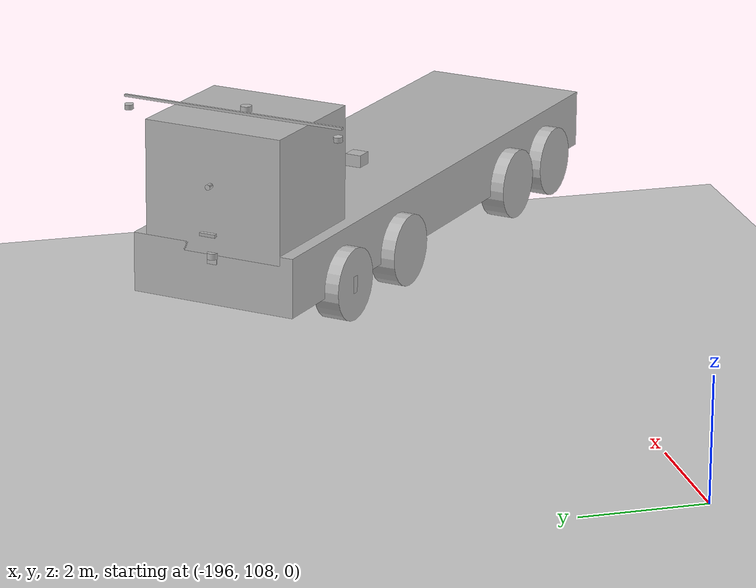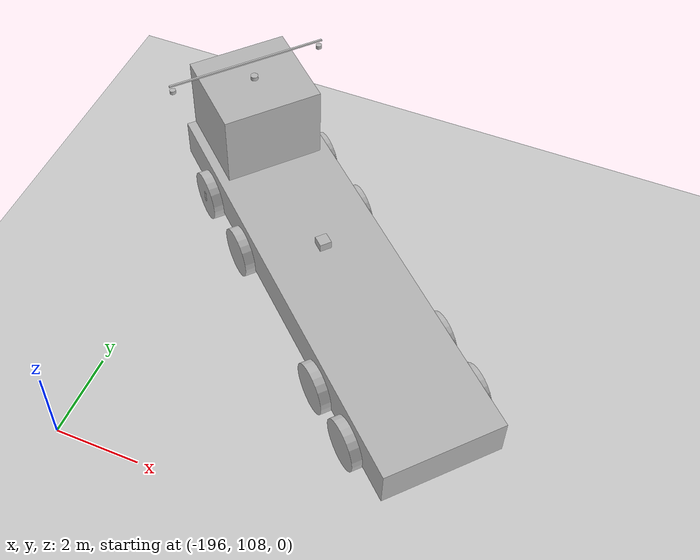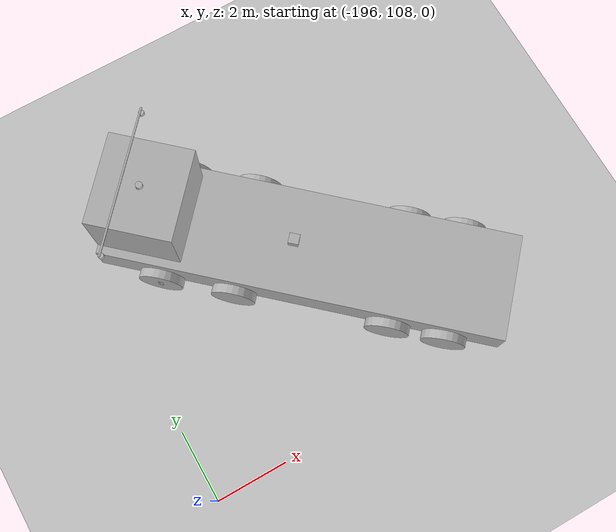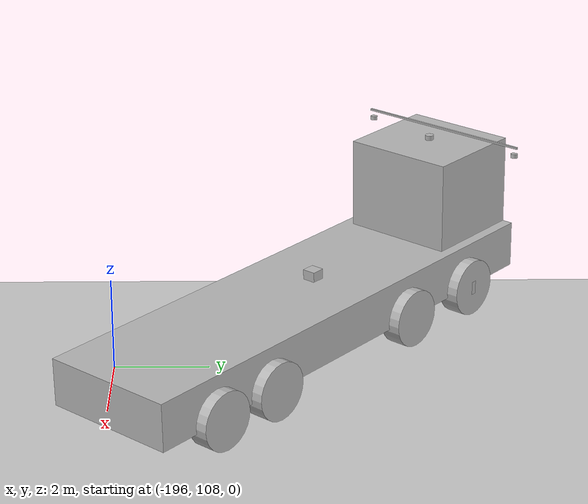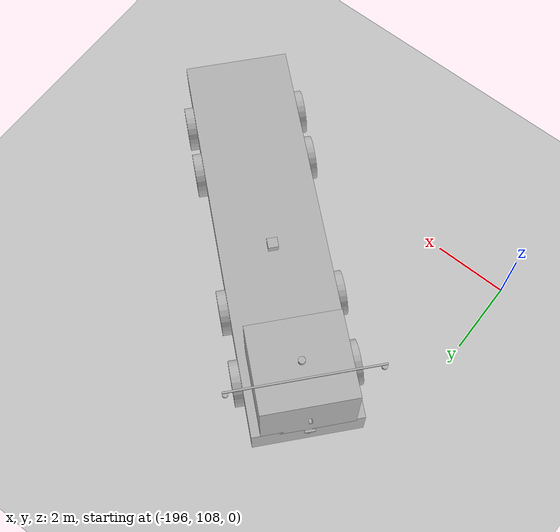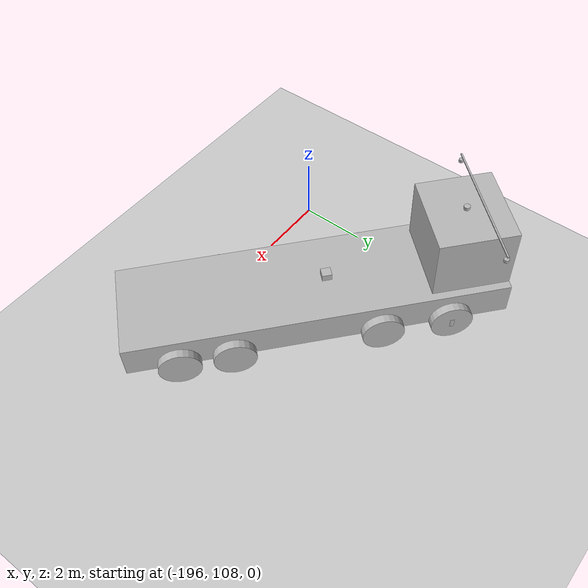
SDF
<sdf version="1.7">
 <world name="default">
  <model name="ground_plane">
   <static>1</static>
   <link name="link">
    <collision name="collision">
     <geometry><plane><normal>0 0 1</normal><size>100 100</size></plane></geometry>
     <surface><friction><ode><mu>100</mu><mu2>50</mu2></ode></friction></surface>
    </collision>
    <visual name="visual">
     <cast_shadows>0</cast_shadows>
     <geometry><plane><normal>0 0 1</normal><size>100 100</size></plane></geometry>
     <material>
      <script><uri>file://media/materials/scripts/gazebo.material</uri><name>Gazebo/Grey</name></script>
     </material>
    </visual>
   </link>
  </model>
  <light name="sun" type="directional">
   <pose>0 0 10 0 -0 0</pose>
   <diffuse>0.8 0.8 0.8 1</diffuse>
   <specular>0.2 0.2 0.2 1</specular>
   <attenuation>
    <range>1000</range>
    <constant>0.9</constant>
    <linear>0.01</linear>
    <quadratic>0.001</quadratic>
   </attenuation>
   <direction>-0.5 0.1 -0.9</direction>
   <spot><inner_angle>0</inner_angle><outer_angle>0</outer_angle><falloff>0</falloff></spot>
  </light>
  <spherical_coordinates>
   <surface_model>EARTH_WGS84</surface_model>
   <latitude_deg>38.1615</latitude_deg>
   <longitude_deg>-122.455</longitude_deg>
   <elevation>488</elevation>
   <heading_deg>180</heading_deg>
  </spherical_coordinates>
  <model name="arocs_truck">
   <link name="base_footprint">
    <inertial>
     <pose>1.00803 0.000764 1.12558 0 -0 0</pose>
     <mass>1111.6</mass>
     <inertia>
      <ixx>1487.02</ixx>
      <ixy>-3.22277</ixy>
      <ixz>-1212.42</ixz>
      <iyy>9311.91</iyy>
      <iyz>0.0249129</iyz>
      <izz>9694.34</izz>
     </inertia>
    </inertial>
    <collision name="base_footprint_fixed_joint_lump__cabin_link_collision">
     <pose>3.8205 0 2.095 0 -0 0</pose>
     <geometry><box><size>1.964 2.14 1.833</size></box></geometry>
    </collision>
    <collision name="base_footprint_fixed_joint_lump__bar_link_collision_1">
     <pose>4.2225 0 3.122 0 -0 1.5708</pose>
     <geometry><box><size>3.478 0.04 0.035</size></box></geometry>
    </collision>
    <collision name="base_footprint_fixed_joint_lump__left_lidar_link_collision_2">
     <pose>4.2225 1.674 2.9645 0.087266 -0 1.5708</pose>
     <geometry><cylinder><length>0.075</length><radius>0.065</radius></cylinder></geometry>
    </collision>
    <collision name="base_footprint_fixed_joint_lump__right_lidar_link_collision_3">
     <pose>4.2225 -1.674 2.9645 0.087266 -0 1.5708</pose>
     <geometry><cylinder><length>0.075</length><radius>0.065</radius></cylinder></geometry>
    </collision>
    <collision name="base_footprint_fixed_joint_lump__camera_link_collision_4">
     <pose>4.8925 0 2.20463 3.14159 1.57079 3.14159</pose>
     <geometry><cylinder><length>0.09</length><radius>0.04</radius></cylinder></geometry>
    </collision>
    <collision name="base_footprint_fixed_joint_lump__gps_link_collision_5">
     <pose>3.8205 0 3.062 0 -0 0</pose>
     <geometry><cylinder><length>0.09</length><radius>0.08</radius></cylinder></geometry>
    </collision>
    <collision name="base_footprint_fixed_joint_lump__kinect_link_collision_6">
     <pose>4.9275 0 1.51033 0 0.098175 0</pose>
     <geometry><box><size>0.05 0.25 0.05</size></box></geometry>
    </collision>
    <collision name="base_footprint_fixed_joint_lump__first_shaft_horizontal_shaft_link_collision_7">
     <pose>3.302 0 0.536 1.57079 1.57079 3.14159</pose>
     <geometry><cylinder><length>2.548</length><radius>0.0536</radius></cylinder></geometry>
    </collision>
    <collision name="base_footprint_fixed_joint_lump__fourth_shaft_horizontal_shaft_link_collision_8">
     <pose>-3.502 0 0.536 1.57079 1.57079 3.14159</pose>
     <geometry><cylinder><length>2.548</length><radius>0.0536</radius></cylinder></geometry>
    </collision>
    <collision name="base_footprint_fixed_joint_lump__imu_link_collision_9">
     <pose>0.4 0 1.377 0 -0 0</pose>
     <geometry><box><size>0.25 0.25 0.25</size></box></geometry>
    </collision>
    <collision name="base_footprint_fixed_joint_lump__radar_link_collision_10">
     <pose>4.8025 0 1.09625 0 -0 0</pose>
     <geometry><box><size>0.05 0.15 0.1</size></box></geometry>
    </collision>
    <collision name="base_footprint_fixed_joint_lump__second_shaft_horizontal_shaft_link_collision_11">
     <pose>1.552 0 0.536 1.57079 1.57079 3.14159</pose>
     <geometry><cylinder><length>2.548</length><radius>0.0536</radius></cylinder></geometry>
    </collision>
    <collision name="base_footprint_fixed_joint_lump__second_wheel_left_link_collision_12">
     <pose>1.552 1.299 0.536 1.5708 0 3.1408</pose>
     <geometry><cylinder><length>0.385</length><radius>0.536</radius></cylinder></geometry>
    </collision>
    <collision name="base_footprint_fixed_joint_lump__second_wheel_right_link_collision_13">
     <pose>1.552 -1.299 0.536 1.5708 0 3.1408</pose>
     <geometry><cylinder><length>0.385</length><radius>0.536</radius></cylinder></geometry>
    </collision>
    <collision name="base_footprint_fixed_joint_lump__sick_link_collision_14">
     <pose>4.8025 0 1.16933 0 -0 0</pose>
     <geometry><cylinder><length>0.09</length><radius>0.08</radius></cylinder></geometry>
    </collision>
    <collision name="base_footprint_fixed_joint_lump__third_shaft_horizontal_shaft_link_collision_15">
     <pose>-2.152 0 0.536 1.57079 1.57079 3.14159</pose>
     <geometry><cylinder><length>2.548</length><radius>0.0536</radius></cylinder></geometry>
    </collision>
    <collision name="base_footprint_fixed_joint_lump__third_wheel_left_link_collision_16">
     <pose>-2.152 1.299 0.536 1.5708 0 3.1408</pose>
     <geometry><cylinder><length>0.385</length><radius>0.536</radius></cylinder></geometry>
    </collision>
    <collision name="base_footprint_fixed_joint_lump__third_wheel_right_link_collision_17">
     <pose>-2.152 -1.299 0.536 1.5708 0 3.1408</pose>
     <geometry><cylinder><length>0.385</length><radius>0.536</radius></cylinder></geometry>
    </collision>
    <visual name="base_footprint_fixed_joint_lump__base_link_visual">
     <pose>0 0 0.877 0 -0 0</pose>
     <geometry><box><size>9.605 2.548 0.877</size></box></geometry>
    </visual>
    <visual name="base_footprint_fixed_joint_lump__cabin_link_visual_1">
     <pose>3.8205 0 2.095 0 -0 0</pose>
     <geometry><box><size>1.964 2.14 1.833</size></box></geometry>
    </visual>
    <visual name="base_footprint_fixed_joint_lump__bar_link_visual_2">
     <pose>4.2225 0 3.122 0 -0 1.5708</pose>
     <geometry><box><size>3.478 0.04 0.035</size></box></geometry>
    </visual>
    <visual name="base_footprint_fixed_joint_lump__left_lidar_link_visual_3">
     <pose>4.2225 1.674 2.9645 0.087266 -0 1.5708</pose>
     <geometry><cylinder><length>0.075</length><radius>0.065</radius></cylinder></geometry>
    </visual>
    <visual name="base_footprint_fixed_joint_lump__right_lidar_link_visual_4">
     <pose>4.2225 -1.674 2.9645 0.087266 -0 1.5708</pose>
     <geometry><cylinder><length>0.075</length><radius>0.065</radius></cylinder></geometry>
    </visual>
    <visual name="base_footprint_fixed_joint_lump__camera_link_visual_5">
     <pose>4.8925 0 2.20463 3.14159 1.57079 3.14159</pose>
     <geometry><cylinder><length>0.09</length><radius>0.04</radius></cylinder></geometry>
    </visual>
    <visual name="base_footprint_fixed_joint_lump__gps_link_visual_6">
     <pose>3.8205 0 3.062 0 -0 0</pose>
     <geometry><cylinder><length>0.09</length><radius>0.08</radius></cylinder></geometry>
    </visual>
    <visual name="base_footprint_fixed_joint_lump__kinect_link_visual_7">
     <pose>4.9275 0 1.51033 0 0.098175 0</pose>
     <geometry><box><size>0.05 0.25 0.05</size></box></geometry>
    </visual>
    <visual name="base_footprint_fixed_joint_lump__first_shaft_horizontal_shaft_link_visual_8">
     <pose>3.302 0 0.536 1.57079 1.57079 3.14159</pose>
     <geometry><cylinder><length>2.573</length><radius>0.0536</radius></cylinder></geometry>
    </visual>
    <visual name="base_footprint_fixed_joint_lump__fourth_shaft_horizontal_shaft_link_visual_9">
     <pose>-3.502 0 0.536 1.57079 1.57079 3.14159</pose>
     <geometry><cylinder><length>2.573</length><radius>0.0536</radius></cylinder></geometry>
    </visual>
    <visual name="base_footprint_fixed_joint_lump__imu_link_visual_10">
     <pose>0.4 0 1.377 0 -0 0</pose>
     <geometry><box><size>0.25 0.25 0.25</size></box></geometry>
    </visual>
    <visual name="base_footprint_fixed_joint_lump__radar_link_visual_11">
     <pose>4.8025 0 1.09625 0 -0 0</pose>
     <geometry><box><size>0.05 0.15 0.1</size></box></geometry>
    </visual>
    <visual name="base_footprint_fixed_joint_lump__second_shaft_horizontal_shaft_link_visual_12">
     <pose>1.552 0 0.536 1.57079 1.57079 3.14159</pose>
     <geometry><cylinder><length>2.573</length><radius>0.0536</radius></cylinder></geometry>
    </visual>
    <visual name="base_footprint_fixed_joint_lump__second_wheel_left_link_visual_13">
     <pose>1.552 1.299 0.536 1.5708 0 3.1408</pose>
     <geometry><cylinder><length>0.385</length><radius>0.536</radius></cylinder></geometry>
    </visual>
    <visual name="base_footprint_fixed_joint_lump__second_wheel_right_link_visual_14">
     <pose>1.552 -1.299 0.536 1.5708 0 3.1408</pose>
     <geometry><cylinder><length>0.385</length><radius>0.536</radius></cylinder></geometry>
    </visual>
    <visual name="base_footprint_fixed_joint_lump__sick_link_visual_15">
     <pose>4.8025 0 1.16933 0 -0 0</pose>
     <geometry><cylinder><length>0.09</length><radius>0.08</radius></cylinder></geometry>
    </visual>
    <visual name="base_footprint_fixed_joint_lump__third_shaft_horizontal_shaft_link_visual_16">
     <pose>-2.152 0 0.536 1.57079 1.57079 3.14159</pose>
     <geometry><cylinder><length>2.573</length><radius>0.0536</radius></cylinder></geometry>
    </visual>
    <visual name="base_footprint_fixed_joint_lump__third_wheel_left_link_visual_17">
     <pose>-2.152 1.299 0.536 1.5708 0 3.1408</pose>
     <geometry><cylinder><length>0.385</length><radius>0.536</radius></cylinder></geometry>
    </visual>
    <visual name="base_footprint_fixed_joint_lump__third_wheel_right_link_visual_18">
     <pose>-2.152 -1.299 0.536 1.5708 0 3.1408</pose>
     <geometry><cylinder><length>0.385</length><radius>0.536</radius></cylinder></geometry>
    </visual>
    <sensor name="left_lidar" type="ray">
     <always_on>1</always_on>
     <visualize>1</visualize>
     <update_rate>5</update_rate>
     <ray>
      <scan>
       <horizontal>
        <samples>360</samples>
        <resolution>1</resolution>
        <min_angle>0</min_angle>
        <max_angle>6.28</max_angle>
       </horizontal>
       <vertical><samples>1</samples><min_angle>0</min_angle><max_angle>0</max_angle></vertical>
      </scan>
      <range><min>0.12</min><max>100</max><resolution>0.015</resolution></range>
      <noise><type>gaussian</type><mean>0</mean><stddev>0.01</stddev></noise>
     </ray>
     <plugin name="left_lidar_scan" filename="libgazebo_ros_ray_sensor.so">
      <ros><remapping>~/out:=left_scan</remapping></ros>
      <output_type>sensor_msgs/LaserScan</output_type>
      <frame_name>left_lidar_link</frame_name>
     </plugin>
     <pose>4.2225 1.674 2.9645 0.087266 -0 1.5708</pose>
    </sensor>
    <sensor name="right_lidar" type="ray">
     <always_on>1</always_on>
     <visualize>1</visualize>
     <update_rate>5</update_rate>
     <ray>
      <scan>
       <horizontal>
        <samples>360</samples>
        <resolution>1</resolution>
        <min_angle>0</min_angle>
        <max_angle>6.28</max_angle>
       </horizontal>
       <vertical><samples>1</samples><min_angle>0</min_angle><max_angle>0</max_angle></vertical>
      </scan>
      <range><min>0.12</min><max>100</max><resolution>0.015</resolution></range>
      <noise><type>gaussian</type><mean>0</mean><stddev>0.01</stddev></noise>
     </ray>
     <plugin name="right_lidar_scan" filename="libgazebo_ros_ray_sensor.so">
      <ros><remapping>~/out:=right_scan</remapping></ros>
      <output_type>sensor_msgs/LaserScan</output_type>
      <frame_name>right_lidar_link</frame_name>
     </plugin>
     <pose>4.2225 -1.674 2.9645 0.087266 -0 1.5708</pose>
    </sensor>
    <sensor name="camera" type="camera">
     <visualize>1</visualize>
     <update_rate>30</update_rate>
     <camera name="head">
      <horizontal_fov>1.0472</horizontal_fov>
      <image><width>800</width><height>800</height><format>R8G8B8</format></image>
      <clip><near>0.05</near><far>300</far></clip>
      <noise><type>gaussian</type><mean>0</mean><stddev>0.007</stddev></noise>
     </camera>
     <plugin name="camera_controller" filename="libgazebo_ros_camera.so">
      <alwaysOn>1</alwaysOn>
      <updateRate>0.0</updateRate>
      <cameraName>/flir/camera</cameraName>
      <imageTopicName>image_raw</imageTopicName>
      <cameraInfoTopicName>camera_info</cameraInfoTopicName>
      <frame_name>camera</frame_name>
      <hackBaseline>0.07</hackBaseline>
      <distortionK1>0.0</distortionK1>
      <distortionK2>0.0</distortionK2>
      <distortionK3>0.0</distortionK3>
      <distortionT1>0.0</distortionT1>
      <distortionT2>0.0</distortionT2>
     </plugin>
     <pose>4.8925 0 2.20463 0 -0 0</pose>
    </sensor>
    <sensor name="arocs_gps" type="gps">
     <always_on>1</always_on>
     <update_rate>1</update_rate>
     <plugin name="gps_plugin" filename="libgazebo_ros_gps_sensor.so">
      <ros><namespace>/gps</namespace><remapping>~/out:=fix</remapping></ros>
     </plugin>
     <pose>3.8205 0 3.062 0 -0 0</pose>
    </sensor>
    <sensor name="kinect_sensor" type="depth">
     <visualize>1</visualize>
     <update_rate>30</update_rate>
     <camera name="kinect_camera">
      <horizontal_fov>1.0472</horizontal_fov>
      <image><width>640</width><height>480</height><format>R8G8B8</format></image>
      <clip><near>0.01</near><far>20</far></clip>
     </camera>
     <plugin name="kinect_plugin" filename="libgazebo_ros_camera.so">
      <baseline>0.2</baseline>
      <alwaysOn>1</alwaysOn>
      <updateRate>30.0</updateRate>
      <frame_name>kinect_depth_frame</frame_name>
      <imageTopicName>image_raw</imageTopicName>
      <cameraInfoTopicName>camera_info</cameraInfoTopicName>
      <frameName>kinect_depth_frame</frameName>
      <pointCloudCutoff>0.5</pointCloudCutoff>
      <pointCloudCutoffMax>3.0</pointCloudCutoffMax>
      <distortionK1>0</distortionK1>
      <distortionK2>0</distortionK2>
      <distortionK3>0</distortionK3>
      <distortionT1>0</distortionT1>
      <distortionT2>0</distortionT2>
      <CxPrime>0</CxPrime>
      <Cx>0</Cx>
      <Cy>0</Cy>
      <focalLength>0</focalLength>
      <hackBaseline>0</hackBaseline>
     </plugin>
     <pose>4.9275 0 1.51033 0 0.098175 0</pose>
    </sensor>
    <sensor name="imu_sensor" type="imu">
     <plugin name="imu_plugin" filename="libgazebo_ros_imu_sensor.so">
      <ros><remapping>~/out:=imu</remapping></ros>
      <initial_orientation_as_reference>0</initial_orientation_as_reference>
     </plugin>
     <always_on>1</always_on>
     <update_rate>200</update_rate>
     <visualize>1</visualize>
     <imu>
      <angular_velocity>
       <x>
        <noise type="gaussian">
         <mean>0</mean>
         <stddev>0.0002</stddev>
         <bias_mean>7.5e-06</bias_mean>
         <bias_stddev>8e-07</bias_stddev>
        </noise>
       </x>
       <y>
        <noise type="gaussian">
         <mean>0</mean>
         <stddev>0.0002</stddev>
         <bias_mean>7.5e-06</bias_mean>
         <bias_stddev>8e-07</bias_stddev>
        </noise>
       </y>
       <z>
        <noise type="gaussian">
         <mean>0</mean>
         <stddev>0.0002</stddev>
         <bias_mean>7.5e-06</bias_mean>
         <bias_stddev>8e-07</bias_stddev>
        </noise>
       </z>
      </angular_velocity>
      <linear_acceleration>
       <x>
        <noise type="gaussian">
         <mean>0</mean>
         <stddev>0.017</stddev>
         <bias_mean>0.1</bias_mean>
         <bias_stddev>0.001</bias_stddev>
        </noise>
       </x>
       <y>
        <noise type="gaussian">
         <mean>0</mean>
         <stddev>0.017</stddev>
         <bias_mean>0.1</bias_mean>
         <bias_stddev>0.001</bias_stddev>
        </noise>
       </y>
       <z>
        <noise type="gaussian">
         <mean>0</mean>
         <stddev>0.017</stddev>
         <bias_mean>0.1</bias_mean>
         <bias_stddev>0.001</bias_stddev>
        </noise>
       </z>
      </linear_acceleration>
     </imu>
     <pose>0.4 0 1.377 0 -0 0</pose>
    </sensor>
    <sensor name="sick_lidar" type="ray">
     <always_on>1</always_on>
     <visualize>1</visualize>
     <update_rate>5</update_rate>
     <ray>
      <scan>
       <horizontal>
        <samples>360</samples>
        <resolution>1</resolution>
        <min_angle>-1.5708</min_angle>
        <max_angle>1.5708</max_angle>
       </horizontal>
       <vertical><samples>1</samples><min_angle>0</min_angle><max_angle>0</max_angle></vertical>
      </scan>
      <range><min>0.12</min><max>50</max><resolution>0.01</resolution></range>
      <noise><type>gaussian</type><mean>0</mean><stddev>0.01</stddev></noise>
     </ray>
     <plugin name="scan_link_lidar" filename="libgazebo_ros_ray_sensor.so">
      <ros><remapping>~/out:=/sick_scan_2D</remapping></ros>
      <output_type>sensor_msgs/LaserScan</output_type>
      <frame_name>sick_link</frame_name>
     </plugin>
     <pose>4.8025 0 1.16933 0 -0 0</pose>
    </sensor>
   </link>
   <joint name="front_left_steer_joint" type="revolute">
    <pose relative_to="base_footprint">3.302 1.299 0.535 0 -0 1.5708</pose>
    <parent>base_footprint</parent>
    <child>front_left_steering_link</child>
    <axis>
     <xyz>0 0 1</xyz>
     <limit><lower>-0.524</lower><upper>0.524</upper><effort>1e+07</effort><velocity>1e+06</velocity></limit>
     <dynamics><spring_reference>0</spring_reference><spring_stiffness>0</spring_stiffness></dynamics>
    </axis>
   </joint>
   <link name="front_left_steering_link">
    <pose relative_to="front_left_steer_joint">0 0 0 0 -0 0</pose>
    <inertial>
     <mass>2</mass>
     <inertia><ixx>0.0304167</ixx><ixy>0</ixy><ixz>0</ixz><iyy>0.0304167</iyy><iyz>0</iyz><izz>0.04</izz></inertia>
    </inertial>
    <collision name="front_left_steering_link_collision">
     <geometry><cylinder><length>0.25</length><radius>0.2</radius></cylinder></geometry>
    </collision>
    <visual name="front_left_steering_link_visual">
     <geometry><cylinder><length>0.25</length><radius>0.2</radius></cylinder></geometry>
    </visual>
   </link>
   <joint name="first_wheel_left_joint" type="revolute">
    <pose relative_to="front_left_steering_link">0 0 0 0 -0 1.57</pose>
    <parent>front_left_steering_link</parent>
    <child>first_wheel_left_link</child>
    <axis>
     <xyz>0 -1 0</xyz>
     <limit><lower>-1e+16</lower><upper>1e+16</upper></limit>
     <dynamics><spring_reference>0</spring_reference><spring_stiffness>0</spring_stiffness></dynamics>
    </axis>
   </joint>
   <link name="first_wheel_left_link">
    <pose relative_to="first_wheel_left_joint">0 0 0 0 -0 0</pose>
    <inertial>
     <mass>74</mass>
     <inertia><ixx>10.63</ixx><ixy>0</ixy><ixz>0</ixz><iyy>10.63</iyy><iyz>0</iyz><izz>21.2599</izz></inertia>
    </inertial>
    <collision name="first_wheel_left_link_collision">
     <pose>0 0 0 1.5708 -0 0</pose>
     <geometry><cylinder><length>0.385</length><radius>0.536</radius></cylinder></geometry>
    </collision>
    <visual name="first_wheel_left_link_visual">
     <pose>0 0 0 1.5708 -0 0</pose>
     <geometry><cylinder><length>0.385</length><radius>0.536</radius></cylinder></geometry>
    </visual>
   </link>
   <joint name="front_right_steer_joint" type="revolute">
    <pose relative_to="base_footprint">3.302 -1.299 0.535 0 -0 1.5708</pose>
    <parent>base_footprint</parent>
    <child>front_right_steering_link</child>
    <axis>
     <xyz>0 0 1</xyz>
     <limit><lower>-0.524</lower><upper>0.524</upper><effort>1e+07</effort><velocity>1e+06</velocity></limit>
     <dynamics><spring_reference>0</spring_reference><spring_stiffness>0</spring_stiffness></dynamics>
    </axis>
   </joint>
   <link name="front_right_steering_link">
    <pose relative_to="front_right_steer_joint">0 0 0 0 -0 0</pose>
    <inertial>
     <mass>2</mass>
     <inertia><ixx>0.0304167</ixx><ixy>0</ixy><ixz>0</ixz><iyy>0.0304167</iyy><iyz>0</iyz><izz>0.04</izz></inertia>
    </inertial>
    <collision name="front_right_steering_link_collision">
     <geometry><cylinder><length>0.25</length><radius>0.2</radius></cylinder></geometry>
    </collision>
    <visual name="front_right_steering_link_visual">
     <geometry><cylinder><length>0.25</length><radius>0.2</radius></cylinder></geometry>
    </visual>
   </link>
   <joint name="first_wheel_right_joint" type="revolute">
    <pose relative_to="front_right_steering_link">0 0 0 0 -0 1.57</pose>
    <parent>front_right_steering_link</parent>
    <child>first_wheel_right_link</child>
    <axis>
     <xyz>0 -1 0</xyz>
     <limit><lower>-1e+16</lower><upper>1e+16</upper></limit>
     <dynamics><spring_reference>0</spring_reference><spring_stiffness>0</spring_stiffness></dynamics>
    </axis>
   </joint>
   <link name="first_wheel_right_link">
    <pose relative_to="first_wheel_right_joint">0 0 0 0 -0 0</pose>
    <inertial>
     <mass>74</mass>
     <inertia><ixx>10.63</ixx><ixy>0</ixy><ixz>0</ixz><iyy>10.63</iyy><iyz>0</iyz><izz>21.2599</izz></inertia>
    </inertial>
    <collision name="first_wheel_right_link_collision">
     <pose>0 0 0 1.5708 -0 0</pose>
     <geometry><cylinder><length>0.385</length><radius>0.536</radius></cylinder></geometry>
    </collision>
    <visual name="first_wheel_right_link_visual">
     <pose>0 0 0 1.5708 -0 0</pose>
     <geometry><cylinder><length>0.385</length><radius>0.536</radius></cylinder></geometry>
    </visual>
   </link>
   <joint name="fourth_wheel_left_joint" type="revolute">
    <pose relative_to="base_footprint">-3.502 1.299 0.536 0 -0 3.1408</pose>
    <parent>base_footprint</parent>
    <child>fourth_wheel_left_link</child>
    <axis>
     <xyz>0 -1 0</xyz>
     <limit><lower>-1e+16</lower><upper>1e+16</upper></limit>
     <dynamics><spring_reference>0</spring_reference><spring_stiffness>0</spring_stiffness></dynamics>
    </axis>
   </joint>
   <link name="fourth_wheel_left_link">
    <pose relative_to="fourth_wheel_left_joint">0 0 0 0 -0 0</pose>
    <inertial>
     <mass>74</mass>
     <inertia><ixx>10.63</ixx><ixy>0</ixy><ixz>0</ixz><iyy>10.63</iyy><iyz>0</iyz><izz>21.2599</izz></inertia>
    </inertial>
    <collision name="fourth_wheel_left_link_collision">
     <pose>0 0 0 1.5708 -0 0</pose>
     <geometry><cylinder><length>0.385</length><radius>0.536</radius></cylinder></geometry>
    </collision>
    <visual name="fourth_wheel_left_link_visual">
     <pose>0 0 0 1.5708 -0 0</pose>
     <geometry><cylinder><length>0.385</length><radius>0.536</radius></cylinder></geometry>
    </visual>
   </link>
   <joint name="fourth_wheel_right_joint" type="revolute">
    <pose relative_to="base_footprint">-3.502 -1.299 0.536 0 -0 3.1408</pose>
    <parent>base_footprint</parent>
    <child>fourth_wheel_right_link</child>
    <axis>
     <xyz>0 -1 0</xyz>
     <limit><lower>-1e+16</lower><upper>1e+16</upper></limit>
     <dynamics><spring_reference>0</spring_reference><spring_stiffness>0</spring_stiffness></dynamics>
    </axis>
   </joint>
   <link name="fourth_wheel_right_link">
    <pose relative_to="fourth_wheel_right_joint">0 0 0 0 -0 0</pose>
    <inertial>
     <mass>74</mass>
     <inertia><ixx>10.63</ixx><ixy>0</ixy><ixz>0</ixz><iyy>10.63</iyy><iyz>0</iyz><izz>21.2599</izz></inertia>
    </inertial>
    <collision name="fourth_wheel_right_link_collision">
     <pose>0 0 0 1.5708 -0 0</pose>
     <geometry><cylinder><length>0.385</length><radius>0.536</radius></cylinder></geometry>
    </collision>
    <visual name="fourth_wheel_right_link_visual">
     <pose>0 0 0 1.5708 -0 0</pose>
     <geometry><cylinder><length>0.385</length><radius>0.536</radius></cylinder></geometry>
    </visual>
   </link>
   <plugin name="ackermann_drive" filename="libgazebo_ros_ackermann_drive.so">
    <ros>
     <parameter name="cmd_vel_topic" value="cmd_vel"/>
     <parameter name="odom_topic" value="odom"/>
     <parameter name="distance_topic" value="distance"/>
    </ros>
    <update_rate>30.0</update_rate>
    <front_left_joint>first_wheel_left_joint</front_left_joint>
    <front_right_joint>first_wheel_right_joint</front_right_joint>
    <rear_left_joint>fourth_wheel_left_joint</rear_left_joint>
    <rear_right_joint>fourth_wheel_right_joint</rear_right_joint>
    <left_steering_joint>front_left_steer_joint</left_steering_joint>
    <right_steering_joint>front_right_steer_joint</right_steering_joint>
    <max_steer>0.6458</max_steer>
    <max_steering_angle>7.85</max_steering_angle>
    <max_speed>20</max_speed>
    <left_steering_pid_gain>1700 0 1</left_steering_pid_gain>
    <left_steering_i_range>0 0</left_steering_i_range>
    <right_steering_pid_gain>1700 0 1</right_steering_pid_gain>
    <right_steering_i_range>0 0</right_steering_i_range>
    <linear_velocity_pid_gain>1200 0 1</linear_velocity_pid_gain>
    <linear_velocity_i_range>0 0</linear_velocity_i_range>
    <publish_odom>1</publish_odom>
    <publish_odom_tf>1</publish_odom_tf>
    <publish_wheel_tf>1</publish_wheel_tf>
    <publish_distance>1</publish_distance>
    <odometry_frame>odom</odometry_frame>
    <robot_base_frame>base_footprint</robot_base_frame>
   </plugin>
   <static>0</static>
   <plugin name="truck_joint_state" filename="libgazebo_ros_joint_state_publisher.so">
    <ros><remapping>~/out:=joint_states</remapping></ros>
    <update_rate>30</update_rate>
    <joint_name>front_right_steer_joint</joint_name>
    <joint_name>front_left_steer_joint</joint_name>
    <joint_name>first_wheel_left_joint</joint_name>
    <joint_name>first_wheel_right_joint</joint_name>
    <joint_name>fourth_wheel_left_joint</joint_name>
    <joint_name>fourth_wheel_right_joint</joint_name>
   </plugin>
   <pose>-191.096 111.849 2.72644 0.000422 -0.020196 2.4139</pose>
  </model>
  <gravity>0 0 -9.8</gravity>
  <magnetic_field>6e-06 2.3e-05 -4.2e-05</magnetic_field>
  <atmosphere type="adiabatic"/>
  <physics type="ode">
   <max_step_size>0.001</max_step_size>
   <real_time_factor>1</real_time_factor>
   <real_time_update_rate>1000</real_time_update_rate>
  </physics>
  <scene><ambient>0.4 0.4 0.4 1</ambient><background>0.7 0.7 0.7 1</background><shadows>1</shadows></scene>
  <audio><device>default</device></audio>
 </world>
</sdf>
